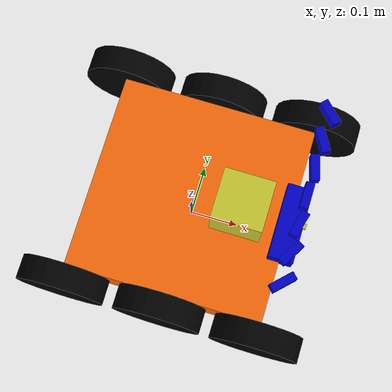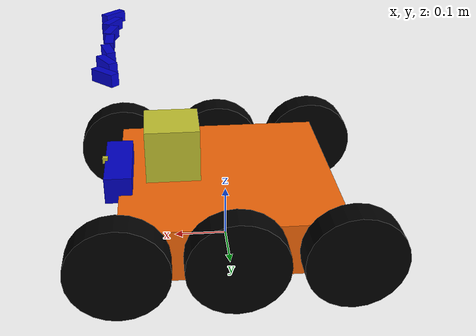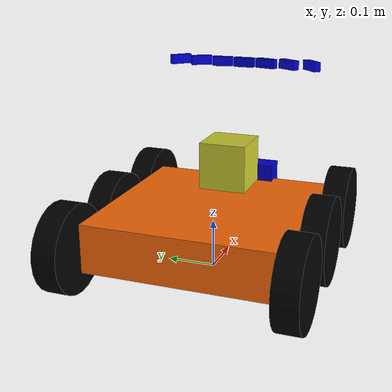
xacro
<?xml version="1.0"?>
<robot name="kulbu" xmlns:xacro="http://www.ros.org/wiki/xacro">
    <xacro:property name="PI" value="3.1415926535897931"/>

    <xacro:property name="chassisHeight" value="0.1"/>
    <xacro:property name="chassisLength" value="0.4"/>
    <xacro:property name="chassisWidth" value="0.4"/>
    <xacro:property name="chassisMass" value="50"/>

    <xacro:property name="wheelWidth" value="0.05"/>
    <xacro:property name="wheelRadius" value="0.09"/>
    <xacro:property name="wheelPos" value="0.2"/>
    <xacro:property name="wheelMass" value="5"/>

    <xacro:property name="cameraSize" value="0.05"/>
    <xacro:property name="cameraMass" value="0.1"/>

    <xacro:arg name="gui" value="true"/>

    <xacro:include filename="$(find kulbu_description)/urdf/kulbu.gazebo" />
    <xacro:include filename="$(find xacro_common)/urdf/materials.xacro" />
    <xacro:include filename="$(find xacro_common)/urdf/macros.xacro" />

    <link name="base_link" />

    <joint name="base_joint" type="fixed">
        <parent link="base_link"/>
        <child link="chassis_link"/>
    </joint>

    <link name='chassis_link'>
        <collision>
            <origin xyz="0 0 ${wheelRadius}" rpy="0 0 0"/>
            <geometry>
                <box size="${chassisLength} ${chassisWidth} ${chassisHeight}"/>
            </geometry>
        </collision>
        <visual>
            <origin xyz="0 0 ${wheelRadius}" rpy="0 0 0"/>
            <geometry>
                <box size="${chassisLength} ${chassisWidth} ${chassisHeight}"/>
            </geometry>
            <material name="orange"/>
        </visual>
        <inertial>
            <origin xyz="0 0 ${wheelRadius}" rpy="0 0 0"/>
            <mass value="${chassisMass}"/>
            <box_inertia m="${chassisMass}" x="${chassisLength}" y="${chassisWidth}" z="${chassisHeight}"/>
        </inertial>
    </link>

    <!-- EffortJointInterface/VelocityJointInterface -->
    <wheel fb="front" lr="left"  tX="1"  tY="1"   mu="0.3" interface="VelocityJointInterface" />
    <wheel fb="front" lr="right" tX="1"  tY="-1"  mu="0.3" interface="VelocityJointInterface" />

    <wheel fb="back"  lr="left"  tX="-1" tY="1"   mu="0.3" interface="VelocityJointInterface" />
    <wheel fb="back"  lr="right" tX="-1" tY="-1"  mu="0.3" interface="VelocityJointInterface" />

    <wheel fb="mid"   lr="left"  tX="0"  tY="1"   mu="0.3" interface="VelocityJointInterface" />
    <wheel fb="mid"   lr="right" tX="0"  tY="-1"  mu="0.3" interface="VelocityJointInterface" />

    <joint name="camera_depth_joint" type="fixed">
        <axis xyz="0 1 0" />
        <origin xyz="${chassisLength/2} 0 ${chassisHeight+0.05}" rpy="0 0 0"/> <!-- Rotate sideways: ${PI/2} -->
        <parent link="chassis_link"/>
        <child link="camera_depth_link"/>
    </joint>

    <link name="camera_depth_link">
        <collision>
            <origin xyz="0 0 0" rpy="0 0 0"/>
            <geometry>
                <box size="${cameraSize} ${cameraSize*3} ${cameraSize}"/>
            </geometry>
        </collision>

        <visual>
            <origin xyz="0 0 0" rpy="0 0 0"/>
            <geometry>
                <box size="${cameraSize} ${cameraSize*3} ${cameraSize}"/>
            </geometry>
            <material name="blue"/>
        </visual>

        <inertial>
            <mass value="${cameraMass}" />
            <origin xyz="0 0 0" rpy="0 0 0"/>
            <box_inertia m="${cameraMass}" x="${cameraSize}" y="${cameraSize*3}" z="${cameraSize}" />
        </inertial>
    </link>

    <!-- OpenNI coordinates are different, transform for display in rvis -->
    <joint name="camera_depth_optical_joint" type="fixed">
        <axis xyz="0 1 0" />
        <origin xyz="${cameraSize/2} 0 ${cameraSize/2}" rpy="${PI/2} ${PI} ${PI/2}"/>
        <parent link="camera_depth_link"/>
        <child link="camera_depth_optical_link"/>
    </joint>

    <link name="camera_depth_optical_link">
        <collision>
            <origin xyz="0 0 0" rpy="0 0 0"/>
            <geometry>
                <box size="0.01 0.01 0.01"/>
            </geometry>
        </collision>

        <visual>
            <origin xyz="0 0 0" rpy="0 0 0"/>
            <geometry>
                <box size="0.01 0.01 0.01"/>
            </geometry>
            <material name="yellow"/>
        </visual>

        <inertial>
            <mass value="0" />
            <origin xyz="0 0 0" rpy="0 0 0"/>
            <box_inertia m="0" x="0" y="0" z="0" />
        </inertial>
    </link>

    <!-- Laser -->
    <joint name="laser_joint" type="fixed">
        <axis xyz="0 1 0" />
        <origin xyz="${chassisLength/4} 0 ${chassisHeight+0.1}" rpy="0 0 0"/><!-- ${PI/2} -->
        <parent link="chassis_link"/>
        <child link="laser_link"/>
    </joint>

    <link name="laser_link">
        <collision>
            <origin xyz="0 0 0" rpy="0 0 0"/>
            <geometry>
                <box size="0.0 0.0 0.0"/>
            </geometry>
        </collision>

        <visual>
            <origin xyz="0 0 0" rpy="0 0 0"/>
            <geometry>
                <box size="0.1 0.1 0.1"/>
            </geometry>
            <material name="yellow"/>
        </visual>

        <inertial>
            <mass value="1e-5" />
            <origin xyz="0 0 0" rpy="0 0 0"/>
            <inertia ixx="1e-6" ixy="0" ixz="0" iyy="1e-6" iyz="0" izz="1e-6" />
        </inertial>
    </link>

    <!--sensor_hector_range name="range"    linX="${0.02+chassisLength/2}" linY="0"     linZ="${chassisHeight+0.3}" angR="0" angP="0" angY="-3.0" /-->
    <sensor_hector_range name="range_0"  linX="${chassisLength/2}" linY="0"     linZ="${chassisHeight+0.3}" angR="0" angP="0" angY="0" />
    <sensor_hector_range name="range_1l" linX="${chassisLength/2}" linY="0.05"  linZ="${chassisHeight+0.3}" angR="0" angP="0" angY="0.261799388" />
    <sensor_hector_range name="range_2l" linX="${chassisLength/2}" linY="0.10"  linZ="${chassisHeight+0.3}" angR="0" angP="0" angY="0.523598776" />
    <sensor_hector_range name="range_3l" linX="${chassisLength/2}" linY="0.15"  linZ="${chassisHeight+0.3}" angR="0" angP="0" angY="0.785398163" />
    <sensor_hector_range name="range_1r" linX="${chassisLength/2}" linY="-0.05" linZ="${chassisHeight+0.3}" angR="0" angP="0" angY="-0.261799388" />
    <sensor_hector_range name="range_2r" linX="${chassisLength/2}" linY="-0.10" linZ="${chassisHeight+0.3}" angR="0" angP="0" angY="-0.523598776" />
    <sensor_hector_range name="range_3r" linX="${chassisLength/2}" linY="-0.15" linZ="${chassisHeight+0.3}" angR="0" angP="0" angY="-0.785398163" />

    <!--sensor_bump name="bump_l" linX="${chassisLength/2}" linY="0.15"  linZ="${chassisHeight}" angR="0" angP="0" angY="0.785398163" /-->
    <!--sensor_bump name="bump_r" linX="${chassisLength/2}" linY="-0.15" linZ="${chassisHeight}" angR="0" angP="0" angY="-0.785398163" /-->

    <!-- IMU -->
    <joint name="imu_joint" type="fixed">
        <axis xyz="0 1 0" />
        <origin xyz="0 0 0" rpy="0 0 0"/>
        <parent link="chassis_link"/>
        <child link="imu_link"/>
    </joint>

    <link name="imu_link">
        <collision>
            <origin xyz="0 0 0" rpy="0 0 0"/>
            <geometry>
                <box size="0.0 0.0 0.0"/>
            </geometry>
        </collision>

        <visual>
            <origin xyz="0 0 0" rpy="0 0 0"/>
            <geometry>
                <box size="0.01 0.01 0.01"/>
            </geometry>
            <material name="yellow"/>
        </visual>

        <inertial>
            <mass value="1e-5" />
            <origin xyz="0 0 0" rpy="0 0 0"/>
            <inertia ixx="1e-6" ixy="0" ixz="0" iyy="1e-6" iyz="0" izz="1e-6" />
        </inertial>
    </link>

</robot>

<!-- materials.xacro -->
<robot name="kulbu" xmlns:xacro="http://www.ros.org/wiki/xacro">
    <material name="black">
      <color rgba="0.0 0.0 0.0 1.0"/>
    </material>

    <material name="blue">
      <color rgba="0.0 0.0 0.8 1.0"/>
    </material>

    <material name="green">
      <color rgba="0.0 0.8 0.0 1.0"/>
    </material>

    <material name="yellow">
      <color rgba="0.8 0.8 0.2 1.0"/>
    </material>

    <material name="grey">
      <color rgba="0.2 0.2 0.2 1.0"/>
    </material>

    <material name="orange">
      <color rgba="${255/255} ${108/255} ${10/255} 1.0"/>
    </material>

    <material name="brown">
      <color rgba="${222/255} ${207/255} ${195/255} 1.0"/>
    </material>

    <material name="red">
      <color rgba="0.8 0.0 0.0 1.0"/>
    </material>

    <material name="white">
      <color rgba="1.0 1.0 1.0 1.0"/>
    </material>
</robot>

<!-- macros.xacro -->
<robot name="kulbu" xmlns:xacro="http://www.ros.org/wiki/xacro">
    <xacro:macro name="cylinder_inertia" params="m r h">
        <inertia  ixx="${m*(3*r*r+h*h)/12}" ixy="0" ixz="0"
          iyy="${m*(3*r*r+h*h)/12}" iyz="0"
          izz="${m*r*r/2}"
        />
    </xacro:macro>

    <xacro:macro name="box_inertia" params="m x y z">
        <inertia  ixx="${m*(y*y+z*z)/12}" ixy="0" ixz="0"
          iyy="${m*(x*x+z*z)/12}" iyz="0"
          izz="${m*(x*x+z*z)/12}"
        />
    </xacro:macro>

    <xacro:macro name="sphere_inertia" params="m r">
        <inertia  ixx="${2*m*r*r/5}" ixy="0" ixz="0"
          iyy="${2*m*r*r/5}" iyz="0"
          izz="${2*m*r*r/5}"
        />
    </xacro:macro>

    <xacro:macro name="wheel" params="fb lr tX tY mu interface">
        <link name="${fb}_${lr}_wheel">
            <collision>
                <origin xyz="0 0 0" rpy="0 ${PI/2} ${PI/2}" />
                <geometry>
                    <cylinder length="${wheelWidth}" radius="${wheelRadius}"/>
                </geometry>
            </collision>

            <visual>
                <origin xyz="0 0 0" rpy="0 ${PI/2} ${PI/2}" />
                <geometry>
                    <cylinder length="${wheelWidth}" radius="${wheelRadius}"/>
                </geometry>
                <material name="black"/>
            </visual>

            <inertial>
                <origin xyz="0 0 0" rpy="0 ${PI/2} ${PI/2}" />
                <mass value="${wheelMass}"/>
                <cylinder_inertia m="${wheelMass}" r="${wheelRadius}" h="${wheelWidth}"/>
            </inertial>
        </link>

        <gazebo reference="${fb}_${lr}_wheel">
            <mu1>${mu}</mu1>
            <mu2>${mu}</mu2>
            <kp>1e+13</kp>
            <kd>1.0</kd>
            <material>Gazebo/Black</material>
        </gazebo>

        <joint name="${fb}_${lr}_wheel_joint" type="continuous">
            <parent link="chassis_link"/>
            <child link="${fb}_${lr}_wheel"/>
            <origin xyz="${tX*chassisLength/2} ${tY*wheelWidth/2+tY*chassisWidth/2} ${wheelRadius}" rpy="0 0 0" />
            <axis xyz="0 1 0" rpy="0 0 0" />
            <limit effort="100" velocity="100"/>
            <joint_properties damping="0.0" friction="0.0"/>
        </joint>

        <transmission name="${fb}_${lr}_trans">
            <type>transmission_interface/SimpleTransmission</type>
            <actuator name="${fb}_${lr}_wheel_motor">
                <mechanicalReduction>1</mechanicalReduction>
            </actuator>
            <joint name="${fb}_${lr}_wheel_joint">
                <hardwareInterface>${interface}</hardwareInterface>
            </joint>
        </transmission>

    </xacro:macro>

    <xacro:macro name="sensor_gazebo_range" params="name linX linY linZ angR angP angY">
        <joint name="${name}_joint" type="fixed">
            <axis xyz="0 1 0" />
            <origin xyz="${linX} ${linY} ${linZ}" rpy="${angR} ${angP} ${angY}" />
            <parent link="chassis_link" />
            <child link="${name}_link" />
        </joint>

        <link name="${name}_link">
            <collision>
                <origin xyz="0 0 0" rpy="0 0 0" />
                <geometry>
                    <box size="0.015 0.015 0.045" />
                </geometry>
            </collision>

            <visual>
                <origin xyz="0 0 0" rpy="0 0 0" />
                <geometry>
                    <box size="0.015 0.015 0.045" />
                </geometry>
                <material name="blue" />
            </visual>

            <inertial>
                <mass value="0.001" />
                <origin xyz="0 0 0" rpy="0 0 0" />
                <inertia ixx="0.000000017" ixy="0" ixz="0" iyy="0.000000017" iyz="0" izz="0.000000017" />
            </inertial>
        </link>

        <gazebo reference="${name}_link">
            <material>Gazebo/Blue</material>
            <sensor type="ray" name="${name}_sensor">
                <always_on>true</always_on>
                <update_rate>5.0</update_rate>
                <ray>
                    <range>
                        <min>0.01</min>
                        <max>4.00</max>
                        <resolution>0.01</resolution>
                    </range>
                    <scan>
                      <horizontal>
                        <samples>5</samples>
                        <resolution>1.0</resolution>
                        <min_angle>-0.130899694</min_angle>
                        <max_angle>0.130899694</max_angle>
                      </horizontal>
                      <vertical>
                        <samples>5</samples>
                        <resolution>1</resolution>
                        <min_angle>-0.130899694</min_angle>
                        <max_angle>0.130899694</max_angle>
                      </vertical>
                    </scan>
                  </ray>
                  <plugin name="gazebo_ros_range_${name}" filename="libgazebo_ros_range.so">
                    <robotNamespace>$(arg ns)</robotNamespace>
                    <gaussianNoise>0.005</gaussianNoise>
                    <alwaysOn>true</alwaysOn>
                    <updateRate>5</updateRate>
                    <topicName>${name}</topicName>
                    <frameName>${name}_link</frameName>
                    <fov>0.5</fov>
                    <radiation>ultrasound</radiation>
                  </plugin>
            </sensor>
        </gazebo>
    </xacro:macro>

    <xacro:macro name="sensor_hector_range" params="name linX linY linZ angR angP angY">
        <joint name="${name}_joint" type="fixed">
            <axis xyz="0 1 0" />
            <origin xyz="${linX} ${linY} ${linZ}" rpy="${angR} ${angP} ${angY}" />
            <parent link="chassis_link" />
            <child link="${name}_link" />
        </joint>

        <link name="${name}_link">
            <collision>
                <origin xyz="0 0 0" rpy="0 0 0" />
                <geometry>
                    <box size="0.0 0.0 0.0" />
                </geometry>
            </collision>

            <visual>
                <origin xyz="0 0 0" rpy="0 0 0" />
                <geometry>
                    <box size="0.015 0.045 0.02" />
                </geometry>
                <material name="blue" />
            </visual>

            <inertial>
                <mass value="0.001" />
                <origin xyz="0 0 0" rpy="0 0 0" />
                <inertia ixx="0.000000017" ixy="0" ixz="0" iyy="0.000000017" iyz="0" izz="0.000000017" />
            </inertial>
        </link>

        <gazebo reference="${name}_link">
            <material>Gazebo/Blue</material>
            <sensor type="ray" name="${name}_sensor">
                <always_on>true</always_on>
                <update_rate>15.0</update_rate>
                <ray>
                    <range>
                        <min>0.02</min>
                        <max>4.00</max>
                        <resolution>0.01</resolution>
                    </range>
                    <!-- 15deg, 6 samples, reduce glitching. FIXME: What is glitching? Framerate? -->
                    <scan>
                        <horizontal>
                            <samples>6</samples>
                            <min_angle>-0.130899694</min_angle>
                            <max_angle>0.130899694</max_angle>
                        </horizontal>
                        <vertical>
                            <samples>6</samples>
                            <min_angle>-0.130899694</min_angle>
                            <max_angle>0.130899694</max_angle>
                        </vertical>
                    </scan>
                </ray>
                <plugin name="gazebo_ros_sonar_${name}_controller" filename="libhector_gazebo_ros_sonar.so">
                    <robotNamespace>$(arg ns)</robotNamespace>
                    <gaussianNoise>0.000</gaussianNoise>
                    <topicName>$(arg ns)/${name}</topicName>
                    <frameId>${name}_link</frameId>
                </plugin>
            </sensor>
        </gazebo>
    </xacro:macro>

    <!-- FIXME: Fails unless connected to world frame, I think... -->
    <xacro:macro name="sensor_bump" params="name linX linY linZ angR angP angY">
        <!-- TODO: Macro these reusable joint templates -->
        <joint name="${name}_joint" type="fixed">
            <axis xyz="0 1 0" />
            <origin xyz="${linX} ${linY} ${linZ}" rpy="${angR} ${angP} ${angY}" />
            <parent link="chassis_link" />
            <child link="${name}_link" />
        </joint>

        <link name="${name}_link">
            <collision name="${name}_link_collision">
                <origin xyz="0 0 0" rpy="0 0 0" />
                <geometry>
                    <box size="0.01 0.10 0.01" />
                </geometry>
            </collision>

            <visual>
                <origin xyz="0 0 0" rpy="0 0 0" />
                <geometry>
                    <box size="0.01 0.10 0.01" />
                </geometry>
                <material name="yellow" />
            </visual>

            <inertial>
                <mass value="0.005" />
                <origin xyz="0 0 0" rpy="0 0 0" />
                <box_inertia m="0.005" x="0.01" y="0.10" z="0.01" />
            </inertial>
        </link>

        <gazebo reference="${name}_link">
            <material>Gazebo/Yellow</material>
            <sensor type="contact" name="${name}_sensor">
                <always_on>true</always_on>
                <update_rate>15.0</update_rate>
                <contact>
                    <collision>${name}_link_collision</collision>
                </contact>
                <plugin name="gazebo_ros_bumper_${name}" filename="libgazebo_ros_bumper.so">
                    <robotNamespace>$(arg ns)</robotNamespace>
                    <bumperTopicName>${name}</bumperTopicName>
                    <frameName>${name}_link</frameName>
                </plugin>
            </sensor>
        </gazebo>
    </xacro:macro>

</robot>
